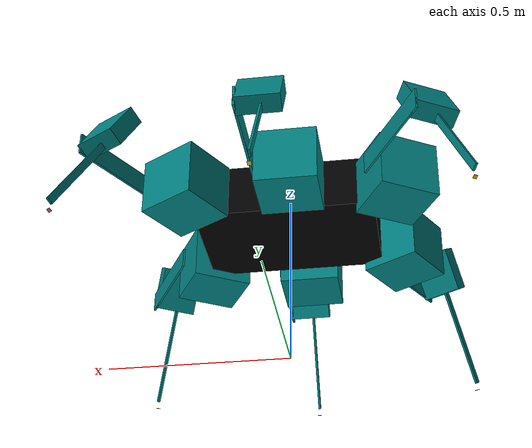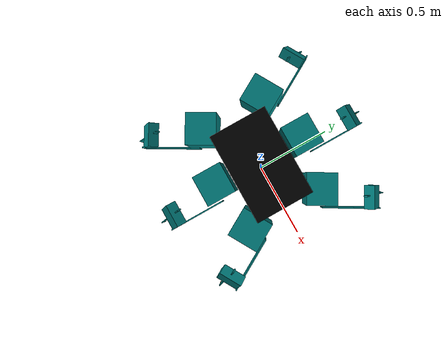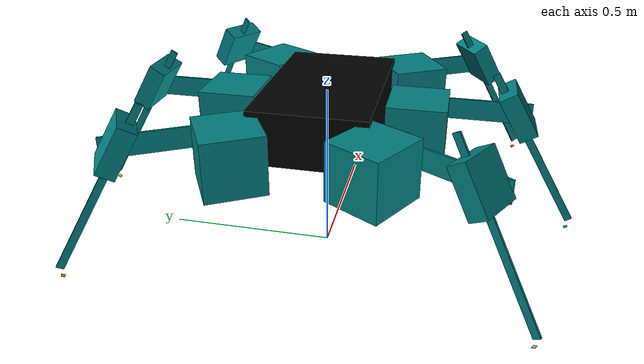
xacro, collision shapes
<?xml version="1.0"?>
<robot name="hexapod" xmlns:xacro="http://www.ros.org/wiki/xacro">
    <xacro:include filename="$(find hexapod_description)/urdf/common_properties.xacro"/>
    <xacro:include filename="$(find hexapod_description)/urdf/links.xacro"/>
    <xacro:include filename="$(find hexapod_description)/urdf/gazebo.xacro"/>

</robot>

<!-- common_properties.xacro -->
<robot xmlns:xacro="http://www.ros.org/wiki/xacro">

    <material name="black">
        <color rgba="0 0 0 1"/>
    </material>

    <material name="teal">
        <color rgba="0 0.5 0.5 1"/>
    </material>

    <xacro:macro name="box_inertia" params="m x y z o_xyz o_rpy">
        <inertial>
            <mass value="${m}" />
            <origin xyz="${o_xyz}" rpy="${o_rpy}" />
            <inertia ixx="${(m/12) * (z*z + y*y)}" ixy="0" ixz="0"
                    iyy="${(m/12) * (x*x + z*z)}" iyz="0"
                    izz="${(m/12) * (x*x + y*y)}" />
        </inertial>
    </xacro:macro>

</robot>

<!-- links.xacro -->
<robot xmlns:xacro="http://www.ros.org/wiki/xacro">

    <link name="base_link"/>

    <joint name="base_joint" type="fixed">
        <parent link="base_link"/>
        <child link="body"/>
        <origin xyz="0 0 0.45" rpy="${pi} 0 0"/>
    </joint>

    <link name="body">
        <visual>
            <origin xyz="0 0 0" rpy="0 0 0"/>
            <geometry>
                <mesh filename="file://$(find hexapod_description)/meshes/thorax.STL" scale="3.0 3.0 3.0"/>
            </geometry>
            <material name="black"/>
        </visual>

        <collision>
            <origin xyz="0 0 0" rpy="0 0 0"/>
            <geometry>
                <box size="0.5 0.32 0.15"/>
            </geometry>
        </collision>

        <xacro:box_inertia m="0.3" x="0.5" y="0.32" z="0.15" o_xyz="0 0 0" o_rpy="0 0 0"/>
    </link>

    <xacro:macro name="leg" params="side num coxa_y_val femur_z_val tibia_box_z_val x y ang">

        <joint name="leg_joint_${side}${num}" type="fixed">
            <parent link="body"/>
            <child link="leg_centre_${side}${num}"/>
            <origin xyz="${x} ${y} 0.0" rpy="0.0 0.0 0.0"/>
        </joint>

        <link name="leg_centre_${side}${num}"/>

        <joint name="coxa_joint_${side}${num}" type="revolute">
            <parent link="leg_centre_${side}${num}"/>
            <child link="coxa_${side}${num}"/>
            <axis xyz="0 0 -1"/>
            <limit lower="-1.5" upper="1.5" velocity="100.0" effort="1000.0"/>
            <origin xyz="0 0 0" rpy="0 0 ${ang}"/>
        </joint>

        <link name="coxa_${side}${num}">
            <visual>
                <origin xyz="0.0 0.0 0.0" rpy="0.0 0.0 0.0"/>
                <geometry>
                    <mesh filename="file://$(find hexapod_description)/meshes/coxa_${side}.STL" scale="3.0 3.0 3.0"/>
                </geometry>
                <material name="teal" />
            </visual>

            <collision>
                <origin xyz="0.05 ${coxa_y_val} 0.02" rpy="0.0 0.0 0.0"/>
                <geometry>
                    <box size="0.16 0.17 0.16"/>
                </geometry>
            </collision>

            <xacro:box_inertia m="0.015" x="0.16" y="0.17" z="0.16" o_xyz="0 0 0" o_rpy="0 0 0"/>
        </link>

        <joint name="femur_joint_${side}${num}" type="revolute">
            <parent link="coxa_${side}${num}"/>
            <child link="femur_${side}${num}"/>
            <axis xyz="0 0 -1"/>
            <limit lower="-1.5" upper="1.5" velocity="100.0" effort="1000.0"/>
            <origin xyz="0.0882 0 0" rpy="-1.57 0 0"/>
        </joint>

        <link name="femur_${side}${num}">
            <visual>
                <origin xyz="0.0 0.0 0.0" rpy="0.0 0.0 0.0"/>
                <geometry>
                    <mesh filename="file://$(find hexapod_description)/meshes/femur_${side}.STL" scale="3.0 3.0 3.0"/>
                </geometry>
                <material name="teal" />
            </visual>

            <collision>
                <origin xyz="0.12 0.0 ${femur_z_val}" rpy="0.0 0.0 0.0"/>
                <geometry>
                    <box size="0.3 0.06 0.006"/>
                </geometry>
            </collision>

            <xacro:box_inertia m="0.012" x="0.3" y="0.06" z="0.006" o_xyz="0.12 0.0 ${femur_z_val}" o_rpy="0 0 0"/>
        </link>

        <joint name="tibia_joint_${side}${num}" type="revolute">
            <origin xyz="0.24 0.0 0.0" rpy="0.0 0.0 -1.1"/>
            <parent link="femur_${side}${num}"/>
            <child link="tibia_${side}${num}"/>
            <axis xyz="0 0 1"/>
            <limit lower="-1.5" upper="1.5" velocity="100.0" effort="1000.0"/>
        </joint>

        <link name="tibia_${side}${num}">
            <visual name="">
                <origin xyz="0.0 0.0 0.0" rpy="0.0 0.0 0.06"/>
                <geometry>
                    <mesh filename="file://$(find hexapod_description)/meshes/tibia_${side}.STL" scale="3.0 3.0 3.0"/>
                </geometry>
                <material name="teal" />
            </visual>

            <collision>
                <origin xyz="-0.035 0.0 ${tibia_box_z_val}" rpy="0.0 0.0 0.06"/>
                <geometry>
                    <box size="0.13 0.05 0.12"/>
                </geometry>
            </collision>
            <collision>
                <origin xyz="0.085 0 0" rpy="0.0 0.0 0.06"/>
                <geometry>
                    <box size="0.48 0.02 0.006"/>
                </geometry>
            </collision>

            <xacro:box_inertia m="0.015" x="0.3" y="0.05" z="0.05" o_xyz="-0.035 0.0 ${tibia_box_z_val}" o_rpy="0 0 0"/>
        </link>

        <joint name="tibia_foot_joint_${side}${num}" type="fixed">
    		<origin xyz="0.345 0 0" rpy="0 0 0" />
    		<parent link="tibia_${side}${num}" />
    		<child link="tibia_foot_${side}${num}" />
  	    </joint>

        <link name="tibia_foot_${side}${num}">
            <collision>
                <origin xyz="0.0 0.0 0.0" rpy="0.0 0.0 0.0"/>
                <geometry>
                    <box size="0.001 0.01 0.01"/>
                </geometry>
            </collision>

		    <xacro:box_inertia m="0.001" x="0.001" y="0.01" z="0.01" o_xyz="0 0 0" o_rpy="0 0 0"/>
  	    </link>

    </xacro:macro>

    <xacro:leg side="r" num="1" coxa_y_val = "-0.03" femur_z_val = "0.067" tibia_box_z_val = "0.008" x="0.262794" 	y="-0.151725" 	ang="-${pi/3}" />
	<xacro:leg side="r" num="2" coxa_y_val = "-0.03" femur_z_val = "0.067" tibia_box_z_val = "0.008" x="0" 		y="-0.20955" 	ang="-${pi/2}" />
	<xacro:leg side="r" num="3" coxa_y_val = "-0.03" femur_z_val = "0.067" tibia_box_z_val = "0.008" x="-0.262794" 	y="-0.151725" 	ang="-${pi*2/3}" />
	<xacro:leg side="l" num="1" coxa_y_val = "0.03" femur_z_val = "-0.067" tibia_box_z_val = "-0.008" x="0.262794" 	y="0.151725"	ang="${pi/3}" />
	<xacro:leg side="l" num="2" coxa_y_val = "0.03" femur_z_val = "-0.067" tibia_box_z_val = "-0.008" x="0" 		y="0.20955"	ang="${pi/2}" />
	<xacro:leg side="l" num="3" coxa_y_val = "0.03" femur_z_val = "-0.067" tibia_box_z_val = "-0.008" x="-0.262794" 	y="0.151725" 	ang="${pi*2/3}" />
</robot>
